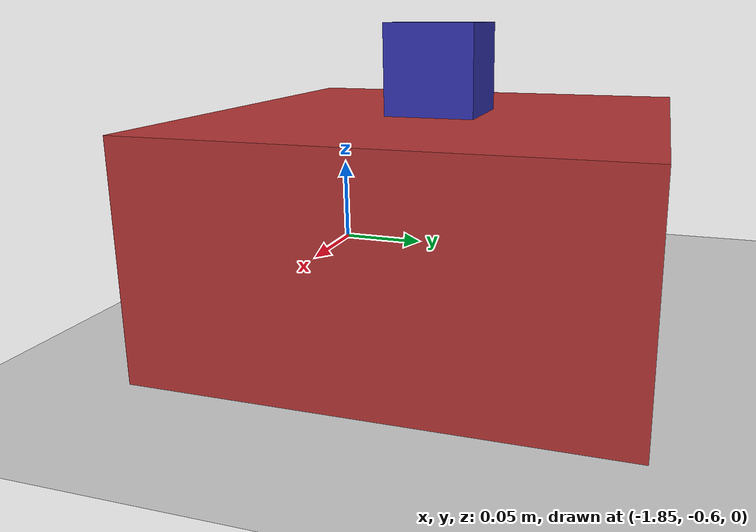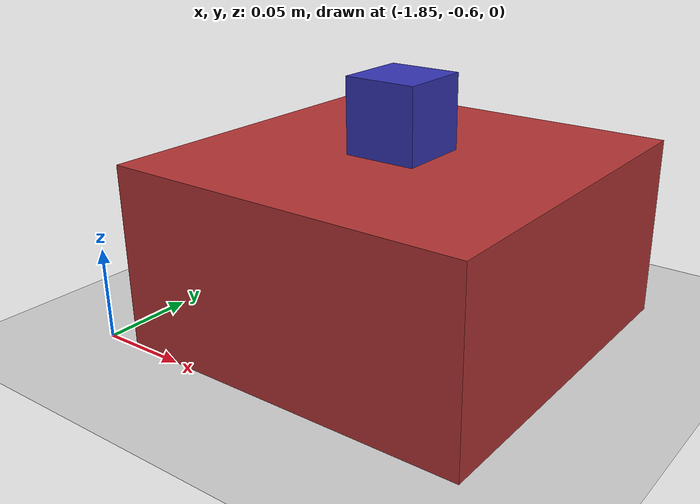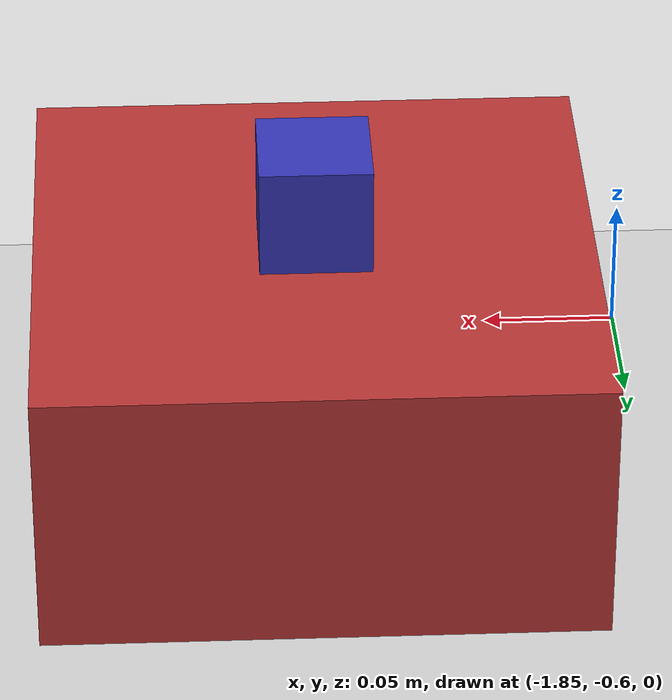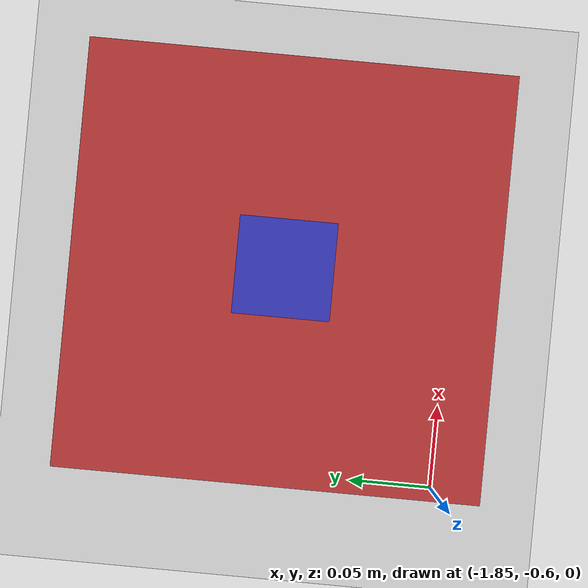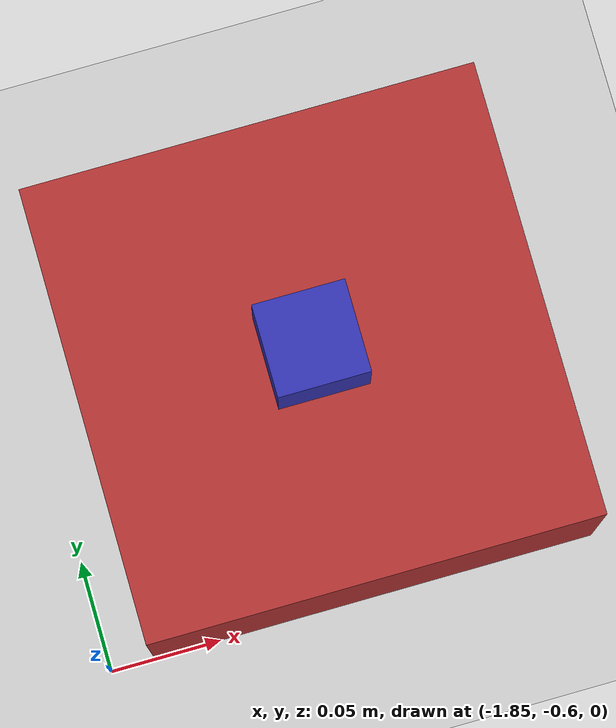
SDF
<?xml version="1.0"?>
<sdf version="1.6">
  <world name="default">

    <!-- Ground plane -->
    <include>
      <uri>model://ground_plane</uri>
    </include>

    <!-- Sun -->
    <include>
      <uri>model://sun</uri>
    </include>

    <!-- Box (20 cm x 20 cm x 10 cm) -->
    <model name="box">
      <pose>-1.73 -0.5 0.05 0 0 0</pose> <!-- z = half height -->
      <static>true</static>
      <link name="link">
        <collision name="collision">
          <geometry>
            <box>
              <size>0.2 0.2 0.1</size> <!-- 20 cm x 20 cm x 10 cm -->
            </box>
          </geometry>
        </collision>
        <visual name="visual">
          <geometry>
            <box>
              <size>0.2 0.2 0.1</size>
            </box>
          </geometry>
          <material>
            <ambient>0.7 0.2 0.2 1</ambient>
            <diffuse>0.7 0.2 0.2 1</diffuse>
          </material>
        </visual>
      </link>
    </model>

    <!-- Small cube (4 cm side) -->
    <model name="small_cube">
      <!-- z = box height + half cube height = 0.1 + 0.02 -->
      <pose>-1.73 -0.5 0.12 0 0 0</pose>
      <static>false</static>
      <link name="link">
        <inertial>
          <mass>0.30</mass> <!-- 100 g for stability -->
        </inertial>

        <collision name="collision">
          <geometry>
            <box>
              <size>0.04 0.04 0.04</size> <!-- 4 cm cube -->
            </box>
          </geometry>

          <surface>
            <friction>
              <ode>
                <mu>10.0</mu>        <!-- High friction for better gripping -->
                <mu2>10.0</mu2>
              </ode>
            </friction>
            <bounce>
              <restitution_coefficient>0.010</restitution_coefficient>
              <threshold>0</threshold>
            </bounce>
          </surface>
        </collision>

        <visual name="visual">
          <geometry>
            <box>
              <size>0.04 0.04 0.04</size>
            </box>
          </geometry>
          <material>
            <ambient>0.2 0.2 0.7 1</ambient>
            <diffuse>0.2 0.2 0.7 1</diffuse>
          </material>
        </visual>
      </link>
    </model>

    <!-- Scene settings -->
    <scene>
      <shadows>false</shadows>
    </scene>

    <!-- GUI camera -->
    <gui fullscreen='0'>
      <camera name='user_camera'>
        <pose frame=''>0.319654 -0.235002 9.29441 0 1.5138 0.009599</pose>
        <view_controller>orbit</view_controller>
        <projection_type>perspective</projection_type>
      </camera>
    </gui>

    <!-- Physics settings -->
<physics type="ode">
  <real_time_update_rate>1000.0</real_time_update_rate>
  <max_step_size>0.001</max_step_size>
  <ode>
    <solver>
      <iters>200</iters>               <!-- More solver iterations -->
      <sor>1.0</sor>
    </solver>
    <constraints>
      <erp>0.8</erp>                   <!-- Stronger contact correction -->
      <cfm>0.0</cfm>
      <contact_surface_layer>0.001</contact_surface_layer>
    </constraints>
  </ode>
</physics>

  </world>
</sdf>
